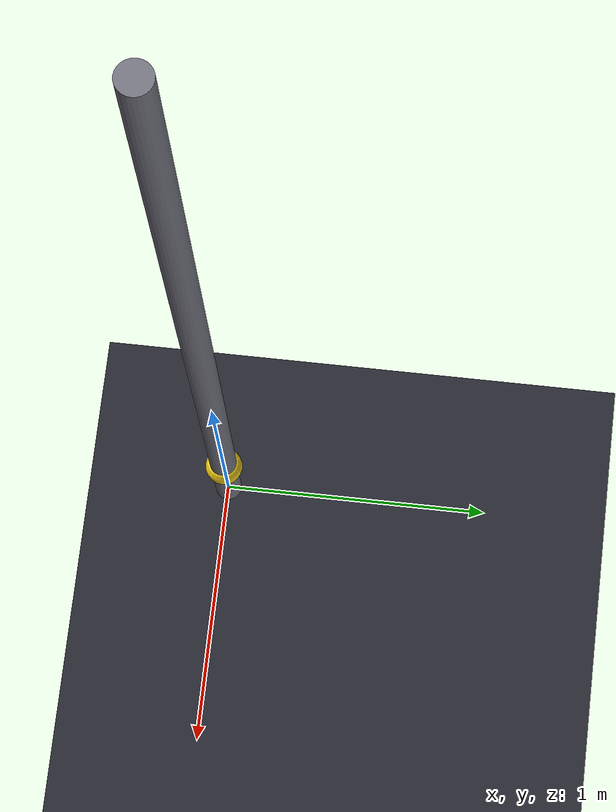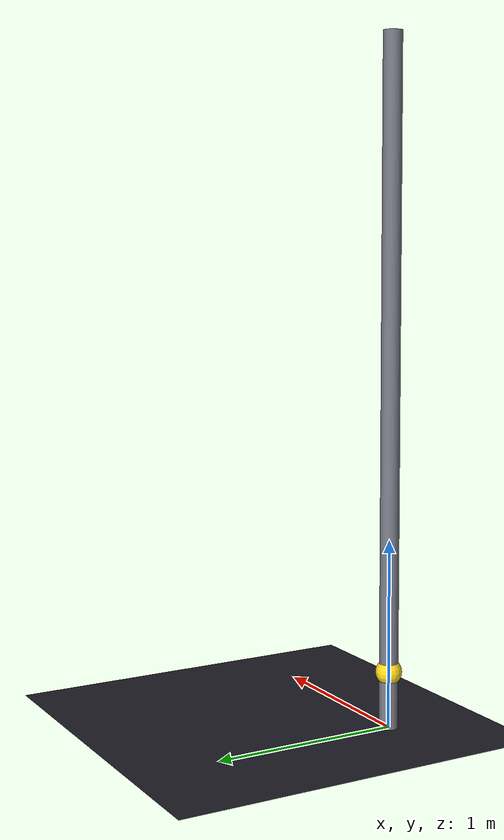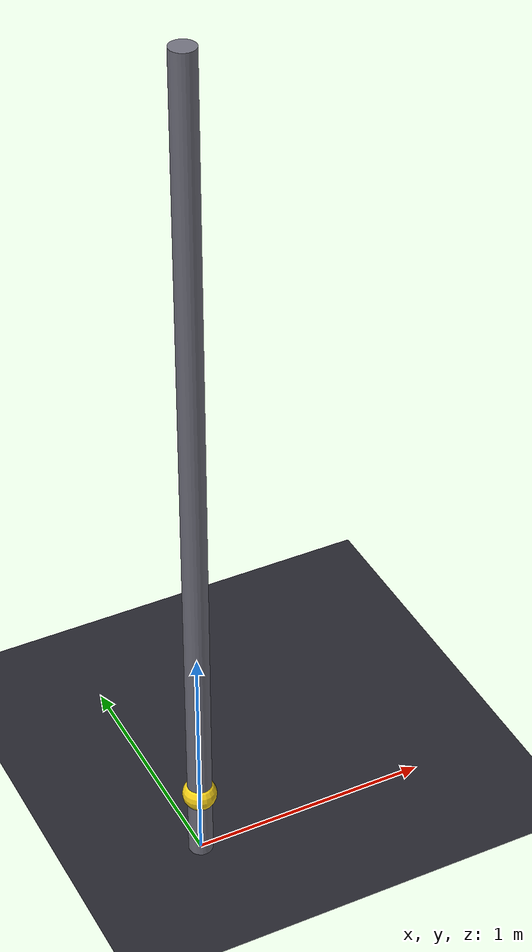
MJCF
<mujoco model="double_pendulum">
  <option gravity="0 0 -9.81" timestep="0.005"/>
  <default>
    <joint damping="0.03" armature="0.01"/>
    <geom friction="0.5 0.02 0.02"/>
  </default>
  <asset>
    <texture name="floor_tex" type="2d" builtin="checker" width="256" height="256"
             rgb1="0.18 0.18 0.22" rgb2="0.12 0.12 0.15"/>
    <material name="floor_mat" texture="floor_tex" texrepeat="4 4"/>
  </asset>
  <worldbody>
    <light pos="0 0 5" diffuse="0.9 0.9 0.9"/>
    <geom name="floor" type="plane" size="5 5 0.1" material="floor_mat"/>
    <body name="pillar" pos="0 0 1.8">
      <geom type="cylinder" size="0.05 1.8" rgba="0.45 0.45 0.5 1" mass="3"/>
      <body name="arm1" pos="0 0 0">
        <joint name="j1" type="hinge" axis="0 1 0" damping="0.02"/>
        <geom type="capsule" fromto="0 0 0 0 0 -0.85" size="0.035"
              rgba="0.9 0.3 0.2 1" mass="1"/>
        <body name="arm2" pos="0 0 -0.85">
          <joint name="j2" type="hinge" axis="0 1 0" damping="0.01"/>
          <geom type="capsule" fromto="0 0 0 0 0 -0.65" size="0.03"
                rgba="0.2 0.5 0.9 1" mass="0.6"/>
          <geom name="bob" type="sphere" pos="0 0 -0.65" size="0.07"
                rgba="1 0.85 0.1 1" mass="1.5"/>
        </body>
      </body>
    </body>
  </worldbody>
  <actuator>
    <motor name="perturb1" joint="j1" ctrlrange="-5 5" ctrllimited="true"/>
    <motor name="perturb2" joint="j2" ctrlrange="-3 3" ctrllimited="true"/>
  </actuator>
  <sensor>
    <jointpos name="j1_pos" joint="j1"/>
    <jointvel name="j1_vel" joint="j1"/>
    <jointpos name="j2_pos" joint="j2"/>
    <jointvel name="j2_vel" joint="j2"/>
    <framepos name="bob_pos" objtype="geom" objname="bob"/>
    <framelinvel name="bob_vel" objtype="geom" objname="bob"/>
  </sensor>
</mujoco>
